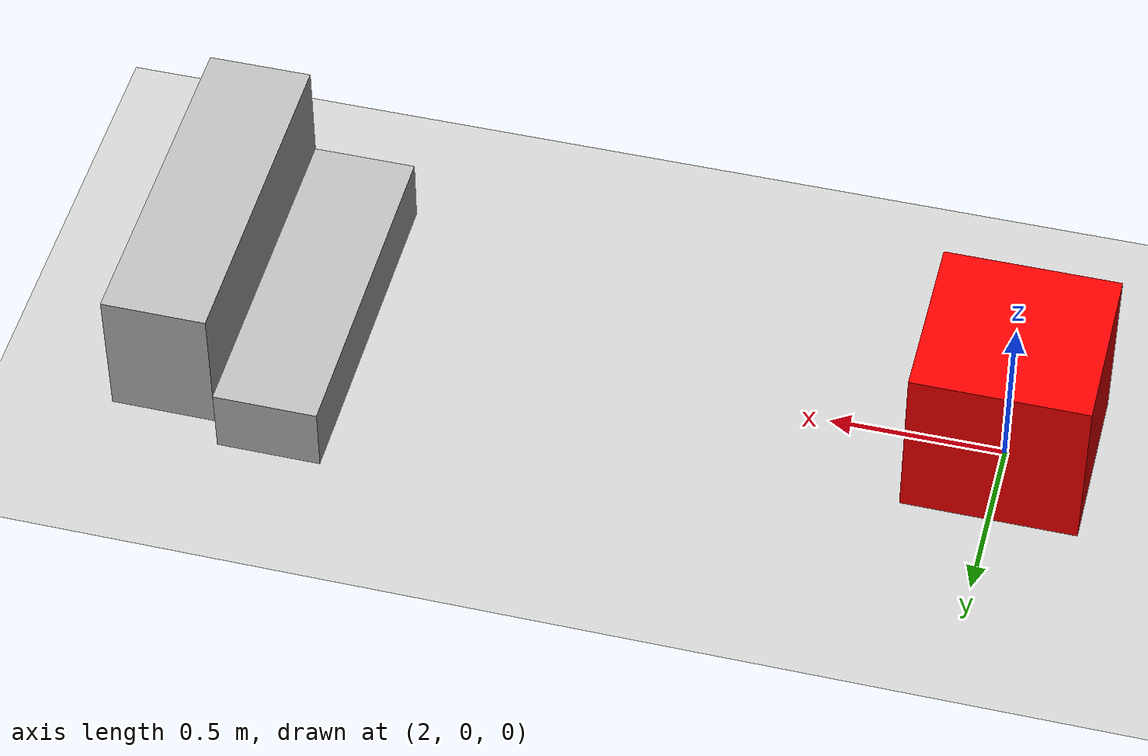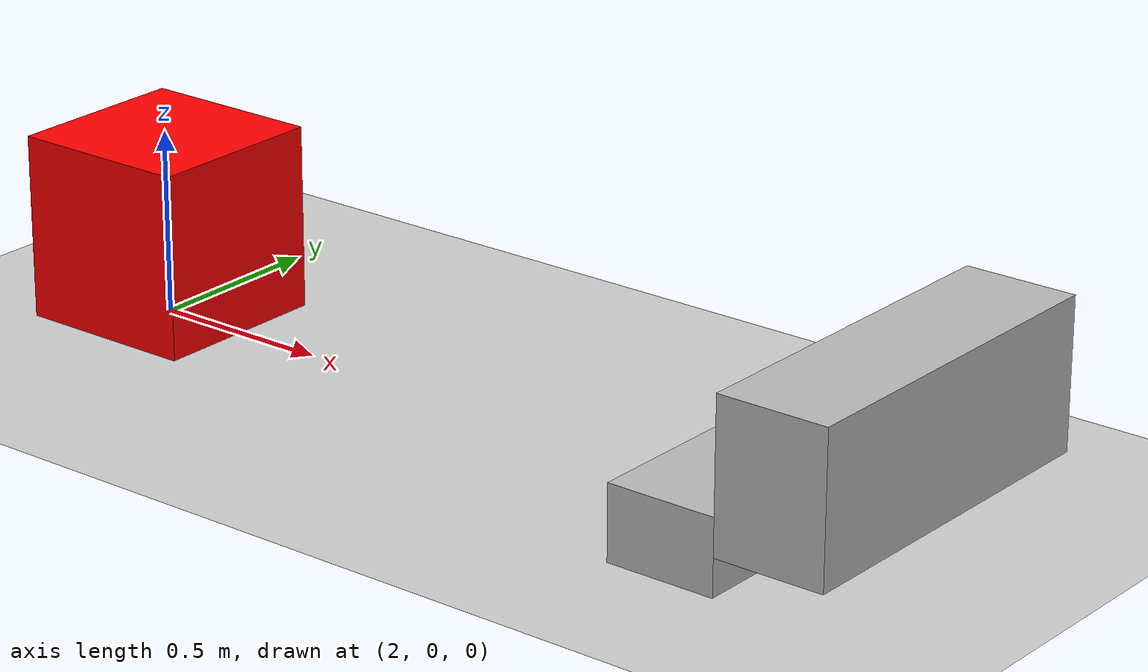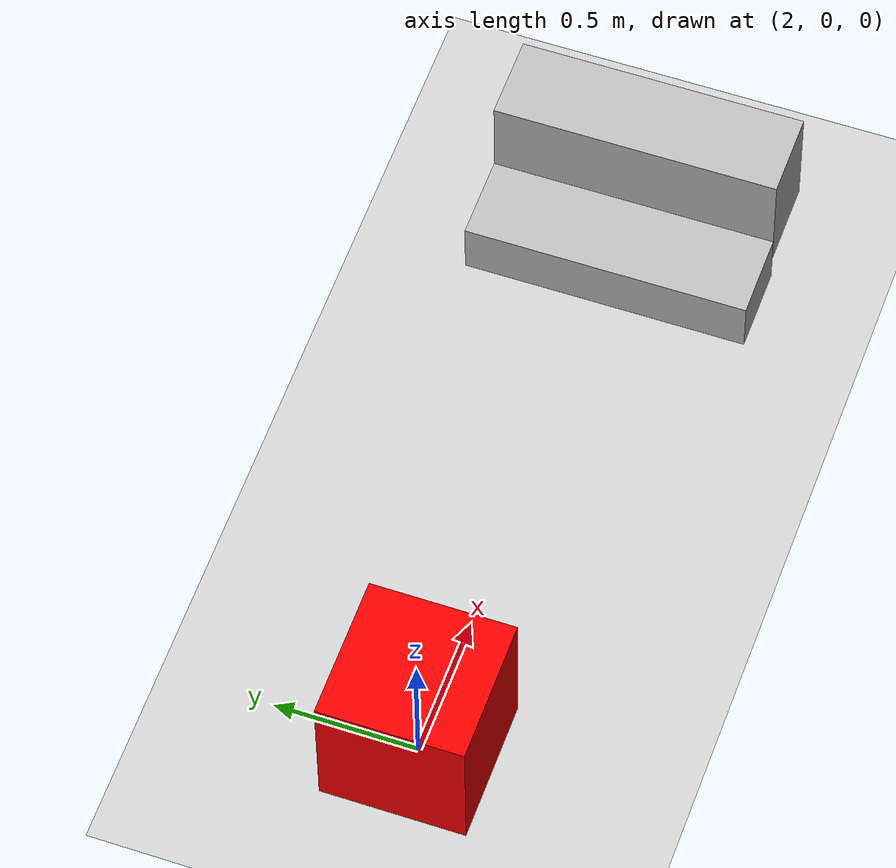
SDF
<?xml version="1.0"?>
<!--
Humanoid Testing World

Gazebo world with obstacles and test scenarios for humanoid robots.
-->
<sdf version="1.6">
  <world name="humanoid_test_world">

    <physics type="ode">
      <max_step_size>0.001</max_step_size>
      <real_time_factor>1.0</real_time_factor>
    </physics>

    <light name="sun" type="directional">
      <cast_shadows>true</cast_shadows>
      <pose>0 0 10 0 0 0</pose>
      <diffuse>1.0 1.0 1.0 1</diffuse>
      <direction>-0.5 0.1 -0.9</direction>
    </light>

    <!-- Ground Plane -->
    <include>
      <uri>model://ground_plane</uri>
    </include>

    <!-- Test Box Obstacle -->
    <model name="box_obstacle">
      <pose>2 0 0.25 0 0 0</pose>
      <static>true</static>
      <link name="link">
        <collision name="collision">
          <geometry>
            <box>
              <size>0.5 0.5 0.5</size>
            </box>
          </geometry>
        </collision>
        <visual name="visual">
          <geometry>
            <box>
              <size>0.5 0.5 0.5</size>
            </box>
          </geometry>
          <material>
            <ambient>1 0 0 1</ambient>
            <diffuse>1 0 0 1</diffuse>
          </material>
        </visual>
      </link>
    </model>

    <!-- Stairs Model -->
    <model name="stairs">
      <pose>4 0 0 0 0 0</pose>
      <static>true</static>
      <link name="step1">
        <pose>0 0 0.1 0 0 0</pose>
        <collision name="collision">
          <geometry>
            <box>
              <size>0.3 1.0 0.2</size>
            </box>
          </geometry>
        </collision>
        <visual name="visual">
          <geometry>
            <box>
              <size>0.3 1.0 0.2</size>
            </box>
          </geometry>
        </visual>
      </link>
      <link name="step2">
        <pose>0.3 0 0.3 0 0 0</pose>
        <collision name="collision">
          <geometry>
            <box>
              <size>0.3 1.0 0.4</size>
            </box>
          </geometry>
        </collision>
        <visual name="visual">
          <geometry>
            <box>
              <size>0.3 1.0 0.4</size>
            </box>
          </geometry>
        </visual>
      </link>
    </model>

  </world>
</sdf>
